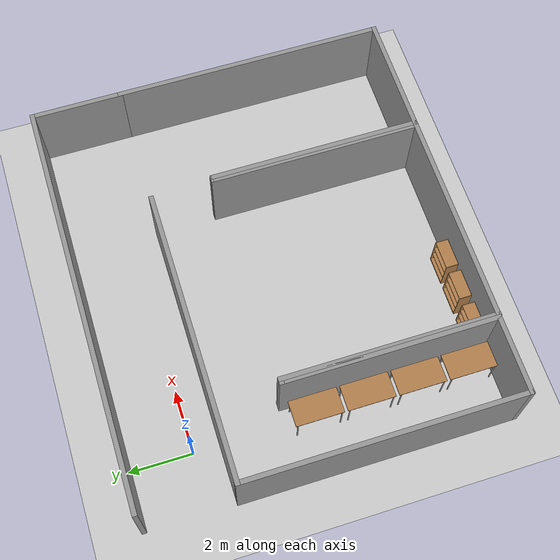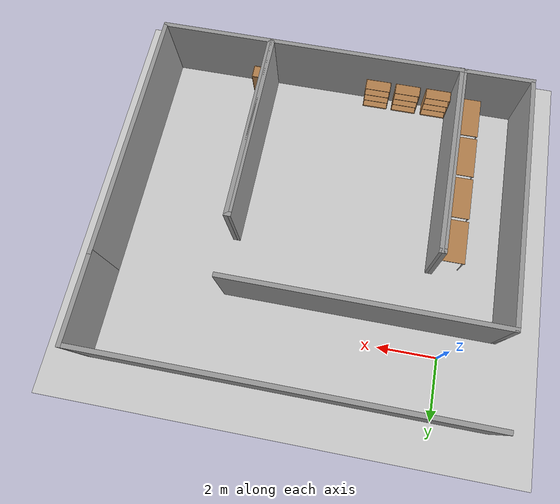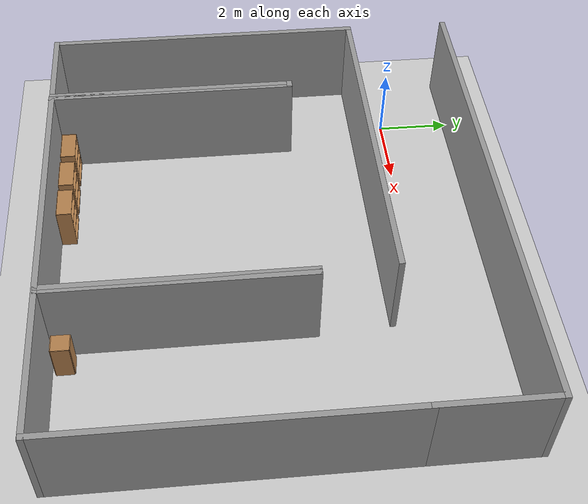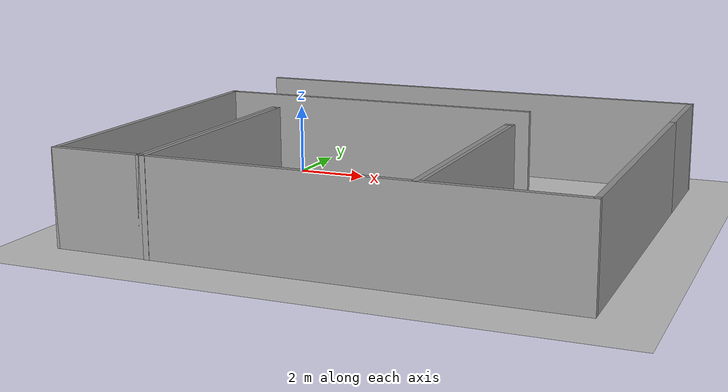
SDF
<sdf version="1.7">
 <world name="default">
  <light name="sun" type="directional">
   <pose>0 0 10 0 -0 0</pose>
   <diffuse>0.8 0.8 0.8 1</diffuse>
   <specular>0.2 0.2 0.2 1</specular>
   <attenuation>
    <range>1000</range>
    <constant>0.9</constant>
    <linear>0.01</linear>
    <quadratic>0.001</quadratic>
   </attenuation>
   <direction>-0.5 0.1 -0.9</direction>
   <spot><inner_angle>0</inner_angle><outer_angle>0</outer_angle><falloff>0</falloff></spot>
  </light>
  <model name="ground_plane">
   <static>1</static>
   <link name="link">
    <collision name="collision">
     <geometry><plane><normal>0 0 1</normal><size>100 100</size></plane></geometry>
     <surface>
      <contact><collide_bitmask>65535</collide_bitmask></contact>
      <friction><ode><mu>100</mu><mu2>50</mu2></ode></friction>
     </surface>
    </collision>
    <visual name="visual">
     <cast_shadows>0</cast_shadows>
     <geometry><plane><normal>0 0 1</normal><size>100 100</size></plane></geometry>
     <material>
      <script><uri>file://media/materials/scripts/gazebo.material</uri><name>Gazebo/Grey</name></script>
     </material>
    </visual>
   </link>
  </model>
  <gravity>0 0 -9.8</gravity>
  <magnetic_field>6e-06 2.3e-05 -4.2e-05</magnetic_field>
  <atmosphere type="adiabatic"/>
  <physics type="ode">
   <max_step_size>0.001</max_step_size>
   <real_time_factor>1</real_time_factor>
   <real_time_update_rate>1000</real_time_update_rate>
  </physics>
  <scene><ambient>0.4 0.4 0.4 1</ambient><background>0.7 0.7 0.7 1</background><shadows>1</shadows></scene>
  <spherical_coordinates>
   <surface_model>EARTH_WGS84</surface_model>
   <latitude_deg>0</latitude_deg>
   <longitude_deg>0</longitude_deg>
   <elevation>0</elevation>
   <heading_deg>0</heading_deg>
  </spherical_coordinates>
  <model name="test_building">
   <pose>4.735 -3.77365 0 0 -0 0</pose>
   <link name="Wall_0">
    <collision name="Wall_0_Collision">
     <geometry><box><size>2.5 0.15 2.5</size></box></geometry>
     <pose>0 0 1.25 0 -0 0</pose>
    </collision>
    <visual name="Wall_0_Visual">
     <pose>0 0 1.25 0 -0 0</pose>
     <geometry><box><size>2.5 0.15 2.5</size></box></geometry>
     <material>
      <script><uri>file://media/materials/scripts/gazebo.material</uri><name>Gazebo/Grey</name></script>
      <ambient>1 1 1 1</ambient>
     </material>
     <meta><layer>0</layer></meta>
    </visual>
    <pose>-5.35 -5.71635 0 0 -0 0</pose>
   </link>
   <link name="Wall_1">
    <collision name="Wall_1_Collision">
     <geometry><box><size>6.75 0.15 2.5</size></box></geometry>
     <pose>0 0 1.25 0 -0 0</pose>
    </collision>
    <visual name="Wall_1_Visual">
     <pose>0 0 1.25 0 -0 0</pose>
     <geometry><box><size>6.75 0.15 2.5</size></box></geometry>
     <material>
      <script><uri>file://media/materials/scripts/gazebo.material</uri><name>Gazebo/Grey</name></script>
      <ambient>1 1 1 1</ambient>
     </material>
     <meta><layer>0</layer></meta>
    </visual>
    <pose>-4.175 -2.41635 0 0 -0 1.5708</pose>
   </link>
   <link name="Wall_11">
    <collision name="Wall_11_Collision">
     <geometry><box><size>6.75 0.15 2.5</size></box></geometry>
     <pose>0 0 1.25 0 -0 0</pose>
    </collision>
    <visual name="Wall_11_Visual">
     <pose>0 0 1.25 0 -0 0</pose>
     <geometry><box><size>6.75 0.15 2.5</size></box></geometry>
     <material>
      <script><uri>file://media/materials/scripts/gazebo.material</uri><name>Gazebo/Grey</name></script>
      <ambient>1 1 1 1</ambient>
     </material>
     <meta><layer>0</layer></meta>
    </visual>
    <pose>2.62563 -2.39164 0 0 -0 1.5708</pose>
   </link>
   <link name="Wall_12">
    <collision name="Wall_12_Collision">
     <geometry><box><size>0.25 0.15 2.5</size></box></geometry>
     <pose>0 0 1.25 0 -0 0</pose>
    </collision>
    <visual name="Wall_12_Visual">
     <pose>0 0 1.25 0 -0 0</pose>
     <geometry><box><size>0.25 0.15 2.5</size></box></geometry>
     <material>
      <script><uri>file://media/materials/scripts/gazebo.material</uri><name>Gazebo/Grey</name></script>
      <ambient>1 1 1 1</ambient>
     </material>
     <meta><layer>0</layer></meta>
    </visual>
    <pose>2.67563 0.908358 0 0 -0 0</pose>
   </link>
   <link name="Wall_13">
    <collision name="Wall_13_Collision">
     <geometry><box><size>6.75076 0.15 2.5</size></box></geometry>
     <pose>0 0 1.25 0 -0 0</pose>
    </collision>
    <visual name="Wall_13_Visual">
     <pose>0 0 1.25 0 -0 0</pose>
     <geometry><box><size>6.75076 0.15 2.5</size></box></geometry>
     <material>
      <script><uri>file://media/materials/scripts/gazebo.material</uri><name>Gazebo/Grey</name></script>
      <ambient>1 1 1 1</ambient>
     </material>
     <meta><layer>0</layer></meta>
    </visual>
    <pose>2.72563 -2.39164 0 0 -0 -1.5708</pose>
   </link>
   <link name="Wall_18">
    <collision name="Wall_18_Collision">
     <geometry><box><size>8.75 0.15 2.5</size></box></geometry>
     <pose>0 0 1.25 0 -0 0</pose>
    </collision>
    <visual name="Wall_18_Visual">
     <pose>0 0 1.25 0 -0 0</pose>
     <geometry><box><size>8.75 0.15 2.5</size></box></geometry>
     <material>
      <script><uri>file://media/materials/scripts/gazebo.material</uri><name>Gazebo/Grey</name></script>
      <ambient>1 1 1 1</ambient>
     </material>
     <meta><layer>0</layer></meta>
    </visual>
    <pose>6.525 -1.41635 0 0 -0 -1.5708</pose>
   </link>
   <link name="Wall_2">
    <collision name="Wall_2_Collision">
     <geometry><box><size>0.25 0.15 2.5</size></box></geometry>
     <pose>0 0 1.25 0 -0 0</pose>
    </collision>
    <visual name="Wall_2_Visual">
     <pose>0 0 1.25 0 -0 0</pose>
     <geometry><box><size>0.25 0.15 2.5</size></box></geometry>
     <material>
      <script><uri>file://media/materials/scripts/gazebo.material</uri><name>Gazebo/Grey</name></script>
      <ambient>1 1 1 1</ambient>
     </material>
     <meta><layer>0</layer></meta>
    </visual>
    <pose>-4.125 0.883646 0 0 -0 0</pose>
   </link>
   <link name="Wall_20">
    <collision name="Wall_20_Collision">
     <geometry><box><size>9.25 0.15 2.5</size></box></geometry>
     <pose>0 0 1.25 0 -0 0</pose>
    </collision>
    <visual name="Wall_20_Visual">
     <pose>0 0 1.25 0 -0 0</pose>
     <geometry><box><size>9.25 0.15 2.5</size></box></geometry>
     <material>
      <script><uri>file://media/materials/scripts/gazebo.material</uri><name>Gazebo/Grey</name></script>
      <ambient>1 1 1 1</ambient>
     </material>
     <meta><layer>0</layer></meta>
    </visual>
    <pose>-1.975 2.88365 0 0 -0 0</pose>
   </link>
   <link name="Wall_22">
    <collision name="Wall_22_Collision">
     <geometry><box><size>3 0.15 2.5</size></box></geometry>
     <pose>0 0 1.25 0 -0 0</pose>
    </collision>
    <visual name="Wall_22_Visual">
     <pose>0 0 1.25 0 -0 0</pose>
     <geometry><box><size>3 0.15 2.5</size></box></geometry>
     <material>
      <script><uri>file://media/materials/scripts/gazebo.material</uri><name>Gazebo/Grey</name></script>
      <ambient>1 1 1 1</ambient>
     </material>
     <meta><layer>0</layer></meta>
    </visual>
    <pose>6.525 4.30865 0 0 -0 1.5708</pose>
   </link>
   <link name="Wall_23">
    <collision name="Wall_23_Collision">
     <geometry><box><size>13.17 0.15 2.5</size></box></geometry>
     <pose>0 0 1.25 0 -0 0</pose>
    </collision>
    <visual name="Wall_23_Visual">
     <pose>0 0 1.25 0 -0 0</pose>
     <geometry><box><size>13.17 0.15 2.5</size></box></geometry>
     <material>
      <script><uri>file://media/materials/scripts/gazebo.material</uri><name>Gazebo/Grey</name></script>
      <ambient>1 1 1 1</ambient>
     </material>
     <meta><layer>0</layer></meta>
    </visual>
    <pose>0.015 5.73365 0 0 -0 3.14159</pose>
   </link>
   <link name="Wall_3">
    <collision name="Wall_3_Collision">
     <geometry><box><size>6.76729 0.15 2.5</size></box></geometry>
     <pose>0 0 1.25 0 -0 0</pose>
    </collision>
    <visual name="Wall_3_Visual">
     <pose>0 0 1.25 0 -0 0</pose>
     <geometry><box><size>6.76729 0.15 2.5</size></box></geometry>
     <material>
      <script><uri>file://media/materials/scripts/gazebo.material</uri><name>Gazebo/Grey</name></script>
      <ambient>1 1 1 1</ambient>
     </material>
     <meta><layer>0</layer></meta>
    </visual>
    <pose>-4.075 -2.425 0 0 -0 -1.5708</pose>
   </link>
   <link name="Wall_6">
    <collision name="Wall_6_Collision">
     <geometry><box><size>8.75 0.15 2.5</size></box></geometry>
     <pose>0 0 1.25 0 -0 0</pose>
    </collision>
    <visual name="Wall_6_Visual">
     <pose>0 0 1.25 0 -0 0</pose>
     <geometry><box><size>8.75 0.15 2.5</size></box></geometry>
     <material>
      <script><uri>file://media/materials/scripts/gazebo.material</uri><name>Gazebo/Grey</name></script>
      <ambient>1 1 1 1</ambient>
     </material>
     <meta><layer>0</layer></meta>
    </visual>
    <pose>-6.525 -1.41635 0 0 -0 1.5708</pose>
   </link>
   <link name="Wall_9">
    <collision name="Wall_9_Collision">
     <geometry><box><size>10.75 0.15 2.5</size></box></geometry>
     <pose>0 0 1.25 0 -0 0</pose>
    </collision>
    <visual name="Wall_9_Visual">
     <pose>0 0 1.25 0 -0 0</pose>
     <geometry><box><size>10.75 0.15 2.5</size></box></geometry>
     <material>
      <script><uri>file://media/materials/scripts/gazebo.material</uri><name>Gazebo/Grey</name></script>
      <ambient>1 1 1 1</ambient>
     </material>
     <meta><layer>0</layer></meta>
    </visual>
    <pose>1.225 -5.725 0 0 -0 0</pose>
   </link>
   <static>1</static>
  </model>
  <model name="table">
   <static>1</static>
   <link name="link">
    <collision name="surface">
     <pose>0 0 1 0 -0 0</pose>
     <geometry><box><size>1.5 0.8 0.03</size></box></geometry>
     <surface><friction><ode><mu>0.6</mu><mu2>0.6</mu2></ode></friction></surface>
    </collision>
    <visual name="visual1">
     <pose>0 0 1 0 -0 0</pose>
     <geometry><box><size>1.5 0.8 0.03</size></box></geometry>
     <material>
      <script><uri>file://media/materials/scripts/gazebo.material</uri><name>Gazebo/Wood</name></script>
     </material>
    </visual>
    <collision name="front_left_leg">
     <pose>0.68 0.38 0.5 0 -0 0</pose>
     <geometry><cylinder><radius>0.02</radius><length>1</length></cylinder></geometry>
    </collision>
    <visual name="front_left_leg">
     <pose>0.68 0.38 0.5 0 -0 0</pose>
     <geometry><cylinder><radius>0.02</radius><length>1</length></cylinder></geometry>
     <material>
      <script><uri>file://media/materials/scripts/gazebo.material</uri><name>Gazebo/Grey</name></script>
     </material>
    </visual>
    <collision name="front_right_leg">
     <pose>0.68 -0.38 0.5 0 -0 0</pose>
     <geometry><cylinder><radius>0.02</radius><length>1</length></cylinder></geometry>
    </collision>
    <visual name="front_right_leg">
     <pose>0.68 -0.38 0.5 0 -0 0</pose>
     <geometry><cylinder><radius>0.02</radius><length>1</length></cylinder></geometry>
     <material>
      <script><uri>file://media/materials/scripts/gazebo.material</uri><name>Gazebo/Grey</name></script>
     </material>
    </visual>
    <collision name="back_right_leg">
     <pose>-0.68 -0.38 0.5 0 -0 0</pose>
     <geometry><cylinder><radius>0.02</radius><length>1</length></cylinder></geometry>
    </collision>
    <visual name="back_right_leg">
     <pose>-0.68 -0.38 0.5 0 -0 0</pose>
     <geometry><cylinder><radius>0.02</radius><length>1</length></cylinder></geometry>
     <material>
      <script><uri>file://media/materials/scripts/gazebo.material</uri><name>Gazebo/Grey</name></script>
     </material>
    </visual>
    <collision name="back_left_leg">
     <pose>-0.68 0.38 0.5 0 -0 0</pose>
     <geometry><cylinder><radius>0.02</radius><length>1</length></cylinder></geometry>
    </collision>
    <visual name="back_left_leg">
     <pose>-0.68 0.38 0.5 0 -0 0</pose>
     <geometry><cylinder><radius>0.02</radius><length>1</length></cylinder></geometry>
     <material>
      <script><uri>file://media/materials/scripts/gazebo.material</uri><name>Gazebo/Grey</name></script>
     </material>
    </visual>
   </link>
   <pose>0 -8.6 0 0 -0 1.5707</pose>
  </model>
  <model name="table_clone">
   <static>1</static>
   <link name="link">
    <collision name="surface">
     <pose>0 0 1 0 -0 0</pose>
     <geometry><box><size>1.5 0.8 0.03</size></box></geometry>
     <surface><friction><ode><mu>0.6</mu><mu2>0.6</mu2></ode></friction></surface>
    </collision>
    <visual name="visual1">
     <pose>0 0 1 0 -0 0</pose>
     <geometry><box><size>1.5 0.8 0.03</size></box></geometry>
     <material>
      <script><uri>file://media/materials/scripts/gazebo.material</uri><name>Gazebo/Wood</name></script>
     </material>
    </visual>
    <collision name="front_left_leg">
     <pose>0.68 0.38 0.5 0 -0 0</pose>
     <geometry><cylinder><radius>0.02</radius><length>1</length></cylinder></geometry>
    </collision>
    <visual name="front_left_leg">
     <pose>0.68 0.38 0.5 0 -0 0</pose>
     <geometry><cylinder><radius>0.02</radius><length>1</length></cylinder></geometry>
     <material>
      <script><uri>file://media/materials/scripts/gazebo.material</uri><name>Gazebo/Grey</name></script>
     </material>
    </visual>
    <collision name="front_right_leg">
     <pose>0.68 -0.38 0.5 0 -0 0</pose>
     <geometry><cylinder><radius>0.02</radius><length>1</length></cylinder></geometry>
    </collision>
    <visual name="front_right_leg">
     <pose>0.68 -0.38 0.5 0 -0 0</pose>
     <geometry><cylinder><radius>0.02</radius><length>1</length></cylinder></geometry>
     <material>
      <script><uri>file://media/materials/scripts/gazebo.material</uri><name>Gazebo/Grey</name></script>
     </material>
    </visual>
    <collision name="back_right_leg">
     <pose>-0.68 -0.38 0.5 0 -0 0</pose>
     <geometry><cylinder><radius>0.02</radius><length>1</length></cylinder></geometry>
    </collision>
    <visual name="back_right_leg">
     <pose>-0.68 -0.38 0.5 0 -0 0</pose>
     <geometry><cylinder><radius>0.02</radius><length>1</length></cylinder></geometry>
     <material>
      <script><uri>file://media/materials/scripts/gazebo.material</uri><name>Gazebo/Grey</name></script>
     </material>
    </visual>
    <collision name="back_left_leg">
     <pose>-0.68 0.38 0.5 0 -0 0</pose>
     <geometry><cylinder><radius>0.02</radius><length>1</length></cylinder></geometry>
    </collision>
    <visual name="back_left_leg">
     <pose>-0.68 0.38 0.5 0 -0 0</pose>
     <geometry><cylinder><radius>0.02</radius><length>1</length></cylinder></geometry>
     <material>
      <script><uri>file://media/materials/scripts/gazebo.material</uri><name>Gazebo/Grey</name></script>
     </material>
    </visual>
   </link>
   <pose>0 -7 0 0 -0 1.5707</pose>
  </model>
  <model name="table_clone_clone">
   <static>1</static>
   <link name="link">
    <collision name="surface">
     <pose>0 0 1 0 -0 0</pose>
     <geometry><box><size>1.5 0.8 0.03</size></box></geometry>
     <surface><friction><ode><mu>0.6</mu><mu2>0.6</mu2></ode></friction></surface>
    </collision>
    <visual name="visual1">
     <pose>0 0 1 0 -0 0</pose>
     <geometry><box><size>1.5 0.8 0.03</size></box></geometry>
     <material>
      <script><uri>file://media/materials/scripts/gazebo.material</uri><name>Gazebo/Wood</name></script>
     </material>
    </visual>
    <collision name="front_left_leg">
     <pose>0.68 0.38 0.5 0 -0 0</pose>
     <geometry><cylinder><radius>0.02</radius><length>1</length></cylinder></geometry>
    </collision>
    <visual name="front_left_leg">
     <pose>0.68 0.38 0.5 0 -0 0</pose>
     <geometry><cylinder><radius>0.02</radius><length>1</length></cylinder></geometry>
     <material>
      <script><uri>file://media/materials/scripts/gazebo.material</uri><name>Gazebo/Grey</name></script>
     </material>
    </visual>
    <collision name="front_right_leg">
     <pose>0.68 -0.38 0.5 0 -0 0</pose>
     <geometry><cylinder><radius>0.02</radius><length>1</length></cylinder></geometry>
    </collision>
    <visual name="front_right_leg">
     <pose>0.68 -0.38 0.5 0 -0 0</pose>
     <geometry><cylinder><radius>0.02</radius><length>1</length></cylinder></geometry>
     <material>
      <script><uri>file://media/materials/scripts/gazebo.material</uri><name>Gazebo/Grey</name></script>
     </material>
    </visual>
    <collision name="back_right_leg">
     <pose>-0.68 -0.38 0.5 0 -0 0</pose>
     <geometry><cylinder><radius>0.02</radius><length>1</length></cylinder></geometry>
    </collision>
    <visual name="back_right_leg">
     <pose>-0.68 -0.38 0.5 0 -0 0</pose>
     <geometry><cylinder><radius>0.02</radius><length>1</length></cylinder></geometry>
     <material>
      <script><uri>file://media/materials/scripts/gazebo.material</uri><name>Gazebo/Grey</name></script>
     </material>
    </visual>
    <collision name="back_left_leg">
     <pose>-0.68 0.38 0.5 0 -0 0</pose>
     <geometry><cylinder><radius>0.02</radius><length>1</length></cylinder></geometry>
    </collision>
    <visual name="back_left_leg">
     <pose>-0.68 0.38 0.5 0 -0 0</pose>
     <geometry><cylinder><radius>0.02</radius><length>1</length></cylinder></geometry>
     <material>
      <script><uri>file://media/materials/scripts/gazebo.material</uri><name>Gazebo/Grey</name></script>
     </material>
    </visual>
   </link>
   <pose>0 -5.4 0 0 -0 1.5707</pose>
  </model>
  <model name="table_clone_clone_clone">
   <static>1</static>
   <link name="link">
    <collision name="surface">
     <pose>0 0 1 0 -0 0</pose>
     <geometry><box><size>1.5 0.8 0.03</size></box></geometry>
     <surface><friction><ode><mu>0.6</mu><mu2>0.6</mu2></ode></friction></surface>
    </collision>
    <visual name="visual1">
     <pose>0 0 1 0 -0 0</pose>
     <geometry><box><size>1.5 0.8 0.03</size></box></geometry>
     <material>
      <script><uri>file://media/materials/scripts/gazebo.material</uri><name>Gazebo/Wood</name></script>
     </material>
    </visual>
    <collision name="front_left_leg">
     <pose>0.68 0.38 0.5 0 -0 0</pose>
     <geometry><cylinder><radius>0.02</radius><length>1</length></cylinder></geometry>
    </collision>
    <visual name="front_left_leg">
     <pose>0.68 0.38 0.5 0 -0 0</pose>
     <geometry><cylinder><radius>0.02</radius><length>1</length></cylinder></geometry>
     <material>
      <script><uri>file://media/materials/scripts/gazebo.material</uri><name>Gazebo/Grey</name></script>
     </material>
    </visual>
    <collision name="front_right_leg">
     <pose>0.68 -0.38 0.5 0 -0 0</pose>
     <geometry><cylinder><radius>0.02</radius><length>1</length></cylinder></geometry>
    </collision>
    <visual name="front_right_leg">
     <pose>0.68 -0.38 0.5 0 -0 0</pose>
     <geometry><cylinder><radius>0.02</radius><length>1</length></cylinder></geometry>
     <material>
      <script><uri>file://media/materials/scripts/gazebo.material</uri><name>Gazebo/Grey</name></script>
     </material>
    </visual>
    <collision name="back_right_leg">
     <pose>-0.68 -0.38 0.5 0 -0 0</pose>
     <geometry><cylinder><radius>0.02</radius><length>1</length></cylinder></geometry>
    </collision>
    <visual name="back_right_leg">
     <pose>-0.68 -0.38 0.5 0 -0 0</pose>
     <geometry><cylinder><radius>0.02</radius><length>1</length></cylinder></geometry>
     <material>
      <script><uri>file://media/materials/scripts/gazebo.material</uri><name>Gazebo/Grey</name></script>
     </material>
    </visual>
    <collision name="back_left_leg">
     <pose>-0.68 0.38 0.5 0 -0 0</pose>
     <geometry><cylinder><radius>0.02</radius><length>1</length></cylinder></geometry>
    </collision>
    <visual name="back_left_leg">
     <pose>-0.68 0.38 0.5 0 -0 0</pose>
     <geometry><cylinder><radius>0.02</radius><length>1</length></cylinder></geometry>
     <material>
      <script><uri>file://media/materials/scripts/gazebo.material</uri><name>Gazebo/Grey</name></script>
     </material>
    </visual>
   </link>
   <pose>0 -3.8 0 0 -0 1.5707</pose>
  </model>
  <model name="bookshelf">
   <static>1</static>
   <link name="link">
    <inertial><mass>1</mass></inertial>
    <collision name="back">
     <pose>0 0.005 0.6 0 -0 0</pose>
     <geometry><box><size>0.9 0.01 1.2</size></box></geometry>
    </collision>
    <visual name="visual1">
     <pose>0 0.005 0.6 0 -0 0</pose>
     <geometry><box><size>0.9 0.01 1.2</size></box></geometry>
     <material>
      <script><uri>file://media/materials/scripts/gazebo.material</uri><name>Gazebo/Wood</name></script>
     </material>
    </visual>
    <collision name="left_side">
     <pose>0.45 -0.195 0.6 0 -0 0</pose>
     <geometry><box><size>0.02 0.4 1.2</size></box></geometry>
    </collision>
    <visual name="visual2">
     <pose>0.45 -0.195 0.6 0 -0 0</pose>
     <geometry><box><size>0.02 0.4 1.2</size></box></geometry>
     <material>
      <script><uri>file://media/materials/scripts/gazebo.material</uri><name>Gazebo/Wood</name></script>
     </material>
    </visual>
    <collision name="right_side">
     <pose>-0.45 -0.195 0.6 0 -0 0</pose>
     <geometry><box><size>0.02 0.4 1.2</size></box></geometry>
    </collision>
    <visual name="visual3">
     <pose>-0.45 -0.195 0.6 0 -0 0</pose>
     <geometry><box><size>0.02 0.4 1.2</size></box></geometry>
     <material>
      <script><uri>file://media/materials/scripts/gazebo.material</uri><name>Gazebo/Wood</name></script>
     </material>
    </visual>
    <collision name="bottom">
     <pose>0 -0.195 0.03 0 -0 0</pose>
     <geometry><box><size>0.88 0.4 0.06</size></box></geometry>
    </collision>
    <visual name="visual4">
     <pose>0 -0.195 0.03 0 -0 0</pose>
     <geometry><box><size>0.88 0.4 0.06</size></box></geometry>
     <material>
      <script><uri>file://media/materials/scripts/gazebo.material</uri><name>Gazebo/Wood</name></script>
     </material>
    </visual>
    <collision name="top">
     <pose>0 -0.195 1.19 0 -0 0</pose>
     <geometry><box><size>0.88 0.4 0.02</size></box></geometry>
    </collision>
    <visual name="visual5">
     <pose>0 -0.195 1.19 0 -0 0</pose>
     <geometry><box><size>0.88 0.4 0.02</size></box></geometry>
     <material>
      <script><uri>file://media/materials/scripts/gazebo.material</uri><name>Gazebo/Wood</name></script>
     </material>
    </visual>
    <collision name="low_shelf">
     <pose>0 -0.195 0.43 0 -0 0</pose>
     <geometry><box><size>0.88 0.4 0.02</size></box></geometry>
    </collision>
    <visual name="visual6">
     <pose>0 -0.195 0.43 0 -0 0</pose>
     <geometry><box><size>0.88 0.4 0.02</size></box></geometry>
     <material>
      <script><uri>file://media/materials/scripts/gazebo.material</uri><name>Gazebo/Wood</name></script>
     </material>
    </visual>
    <collision name="high_shelf">
     <pose>0 -0.195 0.8 0 -0 0</pose>
     <geometry><box><size>0.88 0.4 0.02</size></box></geometry>
    </collision>
    <visual name="visual7">
     <pose>0 -0.195 0.8 0 -0 0</pose>
     <geometry><box><size>0.88 0.4 0.02</size></box></geometry>
     <material>
      <script><uri>file://media/materials/scripts/gazebo.material</uri><name>Gazebo/Wood</name></script>
     </material>
    </visual>
   </link>
   <pose>1.2 -9.4 0 0 -0 -3.14159</pose>
  </model>
  <model name="bookshelf_clone">
   <static>1</static>
   <link name="link">
    <inertial><mass>1</mass></inertial>
    <collision name="back">
     <pose>0 0.005 0.6 0 -0 0</pose>
     <geometry><box><size>0.9 0.01 1.2</size></box></geometry>
    </collision>
    <visual name="visual1">
     <pose>0 0.005 0.6 0 -0 0</pose>
     <geometry><box><size>0.9 0.01 1.2</size></box></geometry>
     <material>
      <script><uri>file://media/materials/scripts/gazebo.material</uri><name>Gazebo/Wood</name></script>
     </material>
    </visual>
    <collision name="left_side">
     <pose>0.45 -0.195 0.6 0 -0 0</pose>
     <geometry><box><size>0.02 0.4 1.2</size></box></geometry>
    </collision>
    <visual name="visual2">
     <pose>0.45 -0.195 0.6 0 -0 0</pose>
     <geometry><box><size>0.02 0.4 1.2</size></box></geometry>
     <material>
      <script><uri>file://media/materials/scripts/gazebo.material</uri><name>Gazebo/Wood</name></script>
     </material>
    </visual>
    <collision name="right_side">
     <pose>-0.45 -0.195 0.6 0 -0 0</pose>
     <geometry><box><size>0.02 0.4 1.2</size></box></geometry>
    </collision>
    <visual name="visual3">
     <pose>-0.45 -0.195 0.6 0 -0 0</pose>
     <geometry><box><size>0.02 0.4 1.2</size></box></geometry>
     <material>
      <script><uri>file://media/materials/scripts/gazebo.material</uri><name>Gazebo/Wood</name></script>
     </material>
    </visual>
    <collision name="bottom">
     <pose>0 -0.195 0.03 0 -0 0</pose>
     <geometry><box><size>0.88 0.4 0.06</size></box></geometry>
    </collision>
    <visual name="visual4">
     <pose>0 -0.195 0.03 0 -0 0</pose>
     <geometry><box><size>0.88 0.4 0.06</size></box></geometry>
     <material>
      <script><uri>file://media/materials/scripts/gazebo.material</uri><name>Gazebo/Wood</name></script>
     </material>
    </visual>
    <collision name="top">
     <pose>0 -0.195 1.19 0 -0 0</pose>
     <geometry><box><size>0.88 0.4 0.02</size></box></geometry>
    </collision>
    <visual name="visual5">
     <pose>0 -0.195 1.19 0 -0 0</pose>
     <geometry><box><size>0.88 0.4 0.02</size></box></geometry>
     <material>
      <script><uri>file://media/materials/scripts/gazebo.material</uri><name>Gazebo/Wood</name></script>
     </material>
    </visual>
    <collision name="low_shelf">
     <pose>0 -0.195 0.43 0 -0 0</pose>
     <geometry><box><size>0.88 0.4 0.02</size></box></geometry>
    </collision>
    <visual name="visual6">
     <pose>0 -0.195 0.43 0 -0 0</pose>
     <geometry><box><size>0.88 0.4 0.02</size></box></geometry>
     <material>
      <script><uri>file://media/materials/scripts/gazebo.material</uri><name>Gazebo/Wood</name></script>
     </material>
    </visual>
    <collision name="high_shelf">
     <pose>0 -0.195 0.8 0 -0 0</pose>
     <geometry><box><size>0.88 0.4 0.02</size></box></geometry>
    </collision>
    <visual name="visual7">
     <pose>0 -0.195 0.8 0 -0 0</pose>
     <geometry><box><size>0.88 0.4 0.02</size></box></geometry>
     <material>
      <script><uri>file://media/materials/scripts/gazebo.material</uri><name>Gazebo/Wood</name></script>
     </material>
    </visual>
   </link>
   <pose>2.32231 -9.4 0 0 -0 3.14159</pose>
  </model>
  <model name="bookshelf_clone_0">
   <static>1</static>
   <link name="link">
    <inertial><mass>1</mass></inertial>
    <collision name="back">
     <pose>0 0.005 0.6 0 -0 0</pose>
     <geometry><box><size>0.9 0.01 1.2</size></box></geometry>
    </collision>
    <visual name="visual1">
     <pose>0 0.005 0.6 0 -0 0</pose>
     <geometry><box><size>0.9 0.01 1.2</size></box></geometry>
     <material>
      <script><uri>file://media/materials/scripts/gazebo.material</uri><name>Gazebo/Wood</name></script>
     </material>
    </visual>
    <collision name="left_side">
     <pose>0.45 -0.195 0.6 0 -0 0</pose>
     <geometry><box><size>0.02 0.4 1.2</size></box></geometry>
    </collision>
    <visual name="visual2">
     <pose>0.45 -0.195 0.6 0 -0 0</pose>
     <geometry><box><size>0.02 0.4 1.2</size></box></geometry>
     <material>
      <script><uri>file://media/materials/scripts/gazebo.material</uri><name>Gazebo/Wood</name></script>
     </material>
    </visual>
    <collision name="right_side">
     <pose>-0.45 -0.195 0.6 0 -0 0</pose>
     <geometry><box><size>0.02 0.4 1.2</size></box></geometry>
    </collision>
    <visual name="visual3">
     <pose>-0.45 -0.195 0.6 0 -0 0</pose>
     <geometry><box><size>0.02 0.4 1.2</size></box></geometry>
     <material>
      <script><uri>file://media/materials/scripts/gazebo.material</uri><name>Gazebo/Wood</name></script>
     </material>
    </visual>
    <collision name="bottom">
     <pose>0 -0.195 0.03 0 -0 0</pose>
     <geometry><box><size>0.88 0.4 0.06</size></box></geometry>
    </collision>
    <visual name="visual4">
     <pose>0 -0.195 0.03 0 -0 0</pose>
     <geometry><box><size>0.88 0.4 0.06</size></box></geometry>
     <material>
      <script><uri>file://media/materials/scripts/gazebo.material</uri><name>Gazebo/Wood</name></script>
     </material>
    </visual>
    <collision name="top">
     <pose>0 -0.195 1.19 0 -0 0</pose>
     <geometry><box><size>0.88 0.4 0.02</size></box></geometry>
    </collision>
    <visual name="visual5">
     <pose>0 -0.195 1.19 0 -0 0</pose>
     <geometry><box><size>0.88 0.4 0.02</size></box></geometry>
     <material>
      <script><uri>file://media/materials/scripts/gazebo.material</uri><name>Gazebo/Wood</name></script>
     </material>
    </visual>
    <collision name="low_shelf">
     <pose>0 -0.195 0.43 0 -0 0</pose>
     <geometry><box><size>0.88 0.4 0.02</size></box></geometry>
    </collision>
    <visual name="visual6">
     <pose>0 -0.195 0.43 0 -0 0</pose>
     <geometry><box><size>0.88 0.4 0.02</size></box></geometry>
     <material>
      <script><uri>file://media/materials/scripts/gazebo.material</uri><name>Gazebo/Wood</name></script>
     </material>
    </visual>
    <collision name="high_shelf">
     <pose>0 -0.195 0.8 0 -0 0</pose>
     <geometry><box><size>0.88 0.4 0.02</size></box></geometry>
    </collision>
    <visual name="visual7">
     <pose>0 -0.195 0.8 0 -0 0</pose>
     <geometry><box><size>0.88 0.4 0.02</size></box></geometry>
     <material>
      <script><uri>file://media/materials/scripts/gazebo.material</uri><name>Gazebo/Wood</name></script>
     </material>
    </visual>
   </link>
   <pose>3.41312 -9.4 0 0 -0 3.14159</pose>
  </model>
  <model name="cabinet">
   <static>1</static>
   <link name="cabinet_bottom_plate">
    <inertial>
     <pose>0 0 -1 0 -0 0</pose>
     <inertia><ixx>2.05</ixx><ixy>0</ixy><ixz>0</ixz><iyy>2.05</iyy><iyz>0</iyz><izz>2.05</izz></inertia>
     <mass>25</mass>
    </inertial>
    <collision name="cabinet_bottom_plate_geom">
     <pose>0 0 0.01 0 -0 0</pose>
     <geometry><box><size>0.45 0.45 0.02</size></box></geometry>
    </collision>
    <visual name="cabinet_bottom_plate_geom_visual">
     <pose>0 0 0.01 0 -0 0</pose>
     <geometry><box><size>0.45 0.45 0.02</size></box></geometry>
     <material>
      <script><uri>file://media/materials/scripts/gazebo.material</uri><name>Gazebo/Wood</name></script>
     </material>
    </visual>
    <collision name="cabinet_bottom_plate_geom_cabinet_back_plate">
     <pose>0.235 0 0.51 0 -0 0</pose>
     <geometry><box><size>0.02 0.45 1.02</size></box></geometry>
    </collision>
    <visual name="cabinet_bottom_plate_geom_cabinet_back_plate_visual">
     <pose>0.235 0 0.51 0 -0 0</pose>
     <geometry><box><size>0.02 0.45 1.02</size></box></geometry>
     <material>
      <script><uri>file://media/materials/scripts/gazebo.material</uri><name>Gazebo/Wood</name></script>
     </material>
    </visual>
    <collision name="cabinet_bottom_plate_geom_cabinet_left_plate">
     <pose>0 0.235 0.51 0 -0 0</pose>
     <geometry><box><size>0.45 0.02 1.02</size></box></geometry>
    </collision>
    <visual name="cabinet_bottom_plate_geom_cabinet_left_plate_visual">
     <pose>0 0.235 0.51 0 -0 0</pose>
     <geometry><box><size>0.45 0.02 1.02</size></box></geometry>
     <material>
      <script><uri>file://media/materials/scripts/gazebo.material</uri><name>Gazebo/Wood</name></script>
     </material>
    </visual>
    <collision name="cabinet_bottom_plate_geom_cabinet_middle_plate">
     <pose>0 0 0.51 0 -0 0</pose>
     <geometry><box><size>0.45 0.45 0.02</size></box></geometry>
    </collision>
    <visual name="cabinet_bottom_plate_geom_cabinet_middle_plate_visual">
     <pose>0 0 0.51 0 -0 0</pose>
     <geometry><box><size>0.45 0.45 0.02</size></box></geometry>
     <material>
      <script><uri>file://media/materials/scripts/gazebo.material</uri><name>Gazebo/Wood</name></script>
     </material>
    </visual>
    <collision name="cabinet_bottom_plate_geom_cabinet_right_plate">
     <pose>0 -0.235 0.51 0 -0 0</pose>
     <geometry><box><size>0.45 0.02 1.02</size></box></geometry>
    </collision>
    <visual name="cabinet_bottom_plate_geom_cabinet_right_plate_visual">
     <pose>0 -0.235 0.51 0 -0 0</pose>
     <geometry><box><size>0.45 0.02 1.02</size></box></geometry>
     <material>
      <script><uri>file://media/materials/scripts/gazebo.material</uri><name>Gazebo/Wood</name></script>
     </material>
    </visual>
    <collision name="cabinet_bottom_plate_geom_cabinet_top_plate">
     <pose>0 0 1.01 0 -0 0</pose>
     <geometry><box><size>0.45 0.45 0.02</size></box></geometry>
    </collision>
    <visual name="cabinet_bottom_plate_geom_cabinet_top_plate_visual">
     <pose>0 0 1.01 0 -0 0</pose>
     <geometry><box><size>0.45 0.45 0.02</size></box></geometry>
     <material>
      <script><uri>file://media/materials/scripts/gazebo.material</uri><name>Gazebo/Wood</name></script>
     </material>
    </visual>
   </link>
   <pose>7.89327 -9.10378 0 0 -0 0</pose>
  </model>
 </world>
</sdf>
